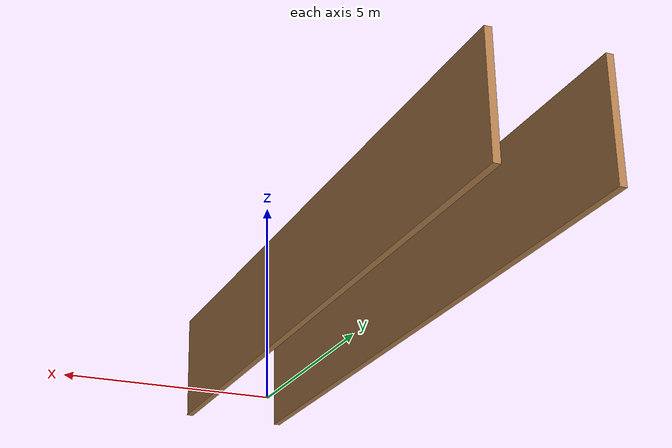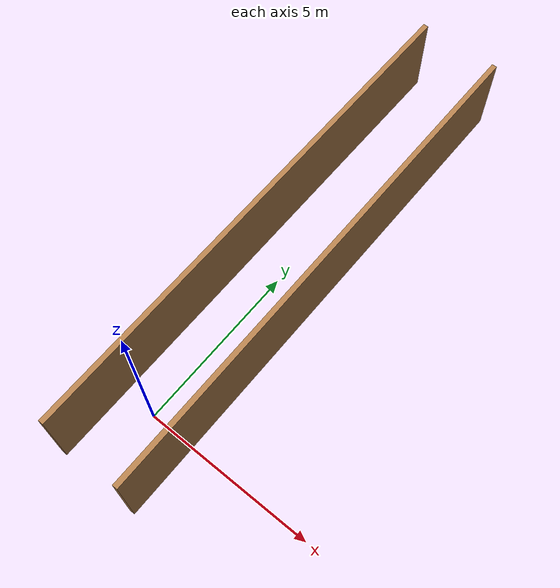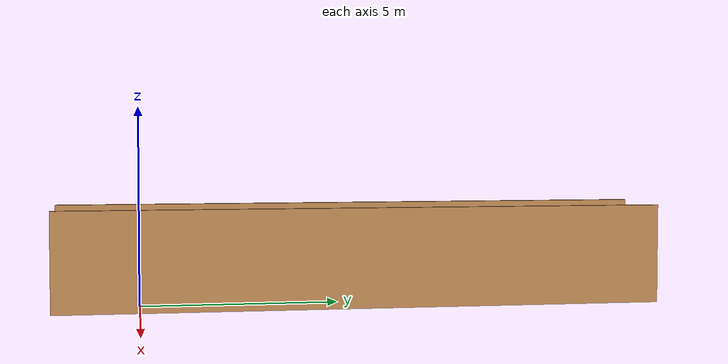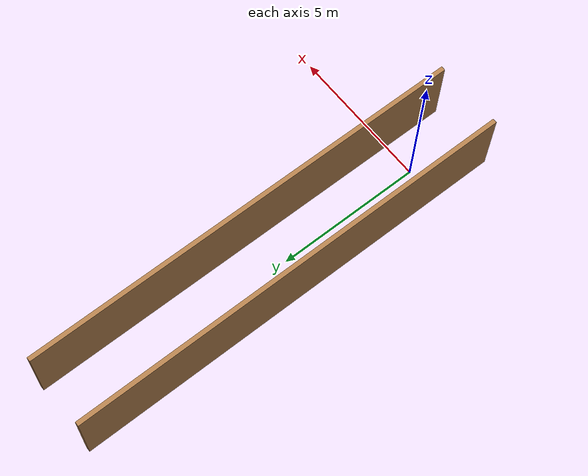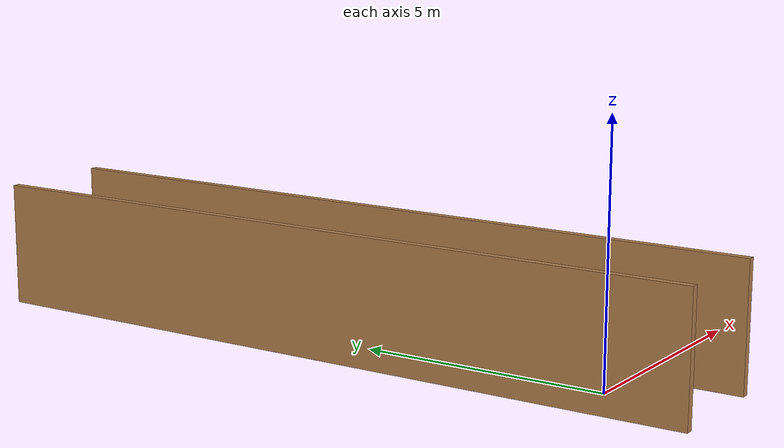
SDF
<?xml version='1.0'?>
<sdf version='1.6'>
  <model name='narrow_corridor'>
    <pose frame=''>0.079676 5.50513 0 0 -0 0</pose>
    <link name='Wall_1'>
      <collision name='Wall_1_Collision'>
        <geometry>
          <box>
            <size>15.25 0.15 2.5</size>
          </box>
        </geometry>
        <pose frame=''>0 0 1.25 0 -0 0</pose>
      </collision>
      <visual name='Wall_1_Visual'>
        <pose frame=''>0 0 1.25 0 -0 0</pose>
        <geometry>
          <box>
            <size>15.25 0.15 2.5</size>
          </box>
        </geometry>
        <material>
          <script>
            <uri>file://media/materials/scripts/gazebo.material</uri>
            <name>Gazebo/Wood</name>
          </script>
          <ambient>1 1 1 1</ambient>
        </material>
        <meta>
          <layer>0</layer>
        </meta>
      </visual>
      <pose frame=''>-1.17321 0 0 0 -0 -1.5708</pose>
    </link>
    <link name='Wall_4'>
      <collision name='Wall_4_Collision'>
        <geometry>
          <box>
            <size>15.25 0.15 2.5</size>
          </box>
        </geometry>
        <pose frame=''>0 0 1.25 0 -0 0</pose>
      </collision>
      <visual name='Wall_4_Visual'>
        <pose frame=''>0 0 1.25 0 -0 0</pose>
        <geometry>
          <box>
            <size>15.25 0.15 2.5</size>
          </box>
        </geometry>
        <material>
          <script>
            <uri>file://media/materials/scripts/gazebo.material</uri>
            <name>Gazebo/Wood</name>
          </script>
          <ambient>1 1 1 1</ambient>
        </material>
        <meta>
          <layer>0</layer>
        </meta>
      </visual>
      <pose frame=''>1.17321 0 0 0 -0 -1.5708</pose>
    </link>
    <static>1</static>
  </model>
</sdf>
